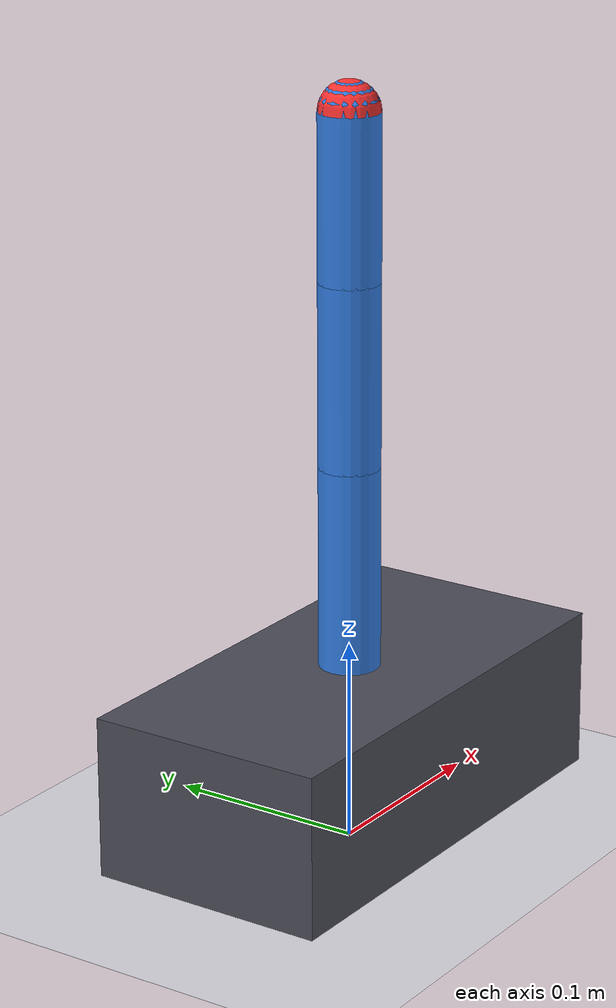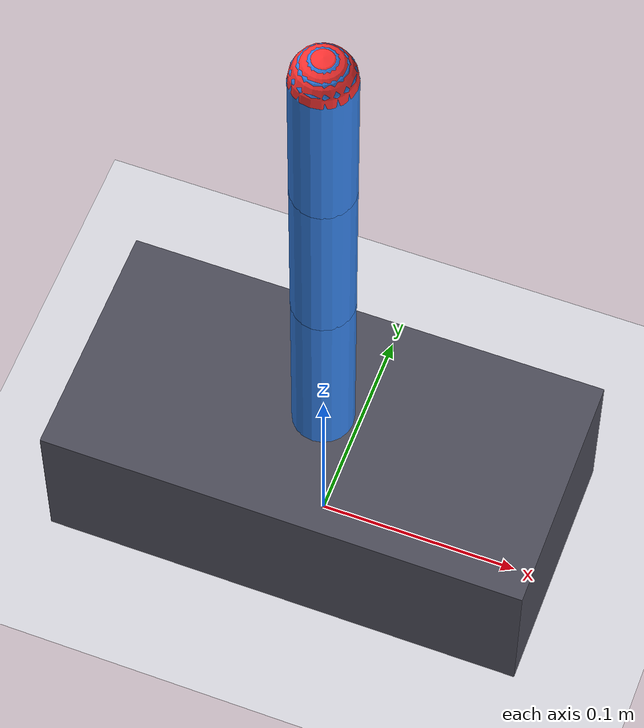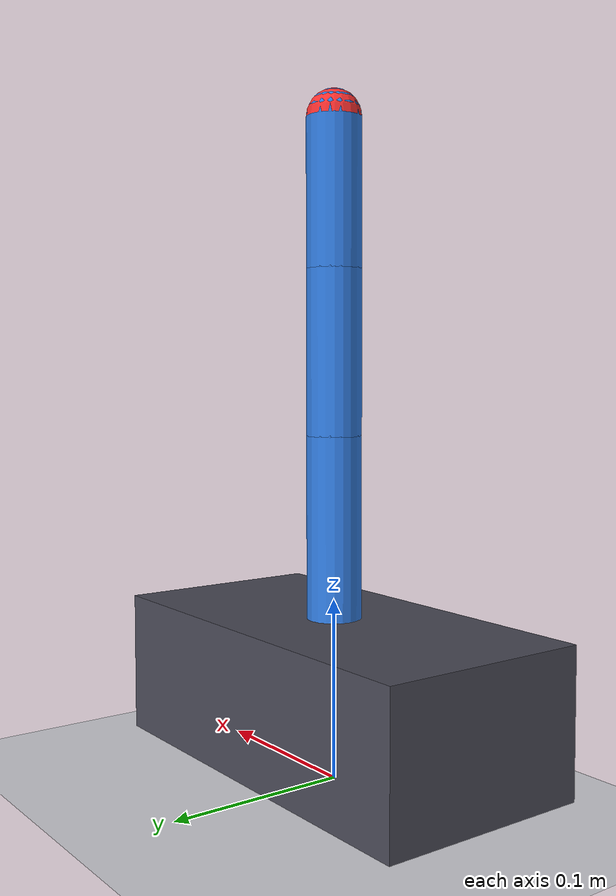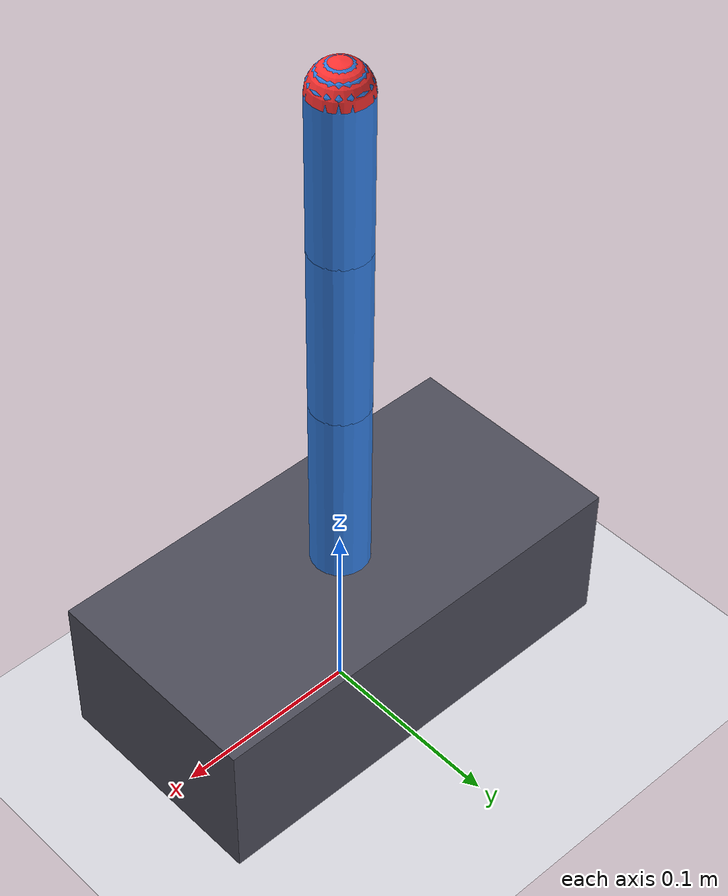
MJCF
<mujoco model="triple_pendulum_cart">
  <!-- Planar cart + three serial links in the xz plane (hinge axis along +y). -->
  <compiler angle="radian" autolimits="true"/>
  <!-- Slightly softened gravity for this tutorial so LQR has a practical basin (still nontrivial). -->
  <option timestep="0.005" gravity="0 0 -9.81" integrator="RK4"/>

  <default>
    <geom type="capsule" size="0.015" rgba="0.2 0.5 0.9 1"/>
    <joint damping="0.08" armature="0.02"/>
    <motor ctrllimited="true" ctrlrange="-300 300" gear="1"/>
  </default>

  <worldbody>
    <light pos="0 0 3" dir="0 0 -1" diffuse="1 1 1"/>
    <geom name="floor" type="plane" size="2 2 0.05" rgba="0.85 0.85 0.88 1"/>

    <body name="cart" pos="0 0 0.05">
      <joint name="slider" type="slide" axis="1 0 0" limited="true" range="-2.5 2.5" damping="0.5"/>
      <geom name="cart_geom" type="box" size="0.12 0.06 0.04" mass="0.85" rgba="0.3 0.3 0.35 1"/>

      <!-- Shorter, lighter links: easier LQR basin while keeping three DOF (tutorial-scale plant). -->
      <body name="link1" pos="0 0 0.04">
        <joint name="hinge1" type="hinge" axis="0 1 0"/>
        <geom fromto="0 0 0 0 0 0.10" mass="0.035"/>
        <body name="link2" pos="0 0 0.10">
          <joint name="hinge2" type="hinge" axis="0 1 0"/>
          <geom fromto="0 0 0 0 0 0.09" mass="0.028"/>
          <body name="link3" pos="0 0 0.09">
            <joint name="hinge3" type="hinge" axis="0 1 0"/>
            <geom fromto="0 0 0 0 0 0.08" mass="0.022"/>
            <site name="tip" pos="0 0 0.08" size="0.015" rgba="1 0.2 0.2 1"/>
          </body>
        </body>
      </body>
    </body>
  </worldbody>

  <actuator>
    <motor name="cart_force" joint="slider"/>
  </actuator>

  <keyframe>
    <key name="upright" qpos="0 0 0 0" qvel="0 0 0 0" ctrl="0"/>
    <!-- Small tilt on the first link (radians) for regulation demos -->
    <key name="tilted" qpos="0 0.04 0 0" qvel="0 0 0 0" ctrl="0"/>
    <!-- Links nominally along +z at q=0 (up); ~pi on each hinge hangs the chain downward in xz -->
    <key name="hanging" qpos="0 3.14159 3.14159 3.14159" qvel="0 0 0 0" ctrl="0"/>
  </keyframe>
</mujoco>
